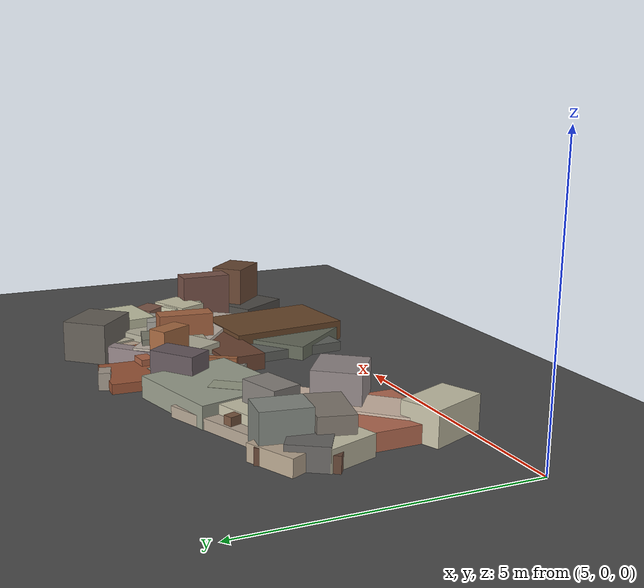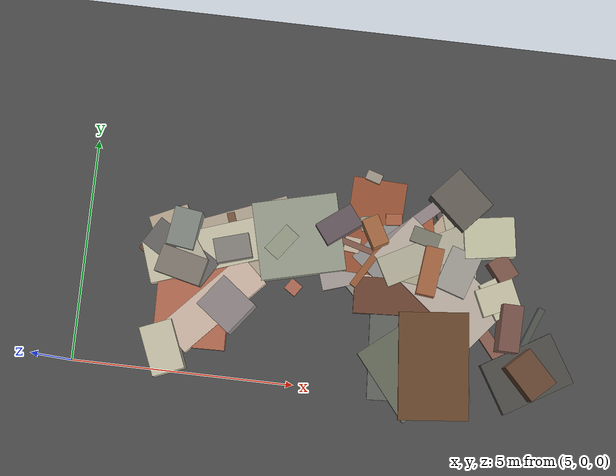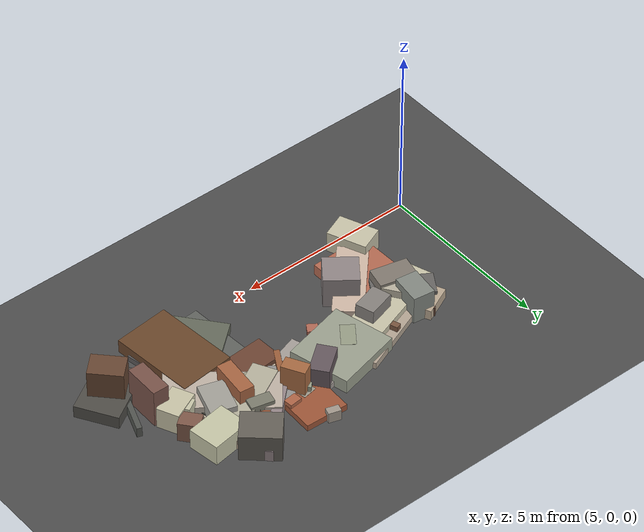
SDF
<sdf version="1.6">
 <world name="navitas_arena">
  <model name="ground_plane">
   <static>true</static>
   <link name="link">
    <collision name="collision">
     <geometry><plane><normal>0 0 1</normal><size>400 400</size></plane></geometry>
     <surface><friction><ode><mu>0.800</mu><mu2>0.800</mu2></ode></friction></surface>
    </collision>
    <visual name="visual">
     <cast_shadows>false</cast_shadows>
     <geometry><plane><normal>0 0 1</normal><size>400 400</size></plane></geometry>
     <material>
      <specular>0.04 0.04 0.04 1</specular>
      <script>
       <uri>file://media/materials/scripts/navitas_asphalt.material</uri>
       <name>Navitas/RealArenaAsphalt</name>
      </script>
     </material>
    </visual>
   </link>
  </model>
  <model name="deb_orta_11">
   <static>true</static>
   <pose>8.083 2.149 0.000 0 0 0</pose>
   <link name="link">
    <collision name="col_0">
     <pose>0.228 0.788 0.101 0.000 0.000 0.381</pose>
     <geometry><box><size>2.938 1.582 0.202</size></box></geometry>
    </collision>
    <visual name="vis_0">
     <pose>0.228 0.788 0.101 0.000 0.000 0.381</pose>
     <geometry><box><size>2.938 1.582 0.202</size></box></geometry>
     <material>
      <ambient>0.66 0.60 0.54 1</ambient>
      <diffuse>0.71 0.65 0.58 1</diffuse>
      <specular>0.05 0.05 0.045 1</specular>
     </material>
    </visual>
    <collision name="col_1">
     <pose>-0.046 -0.546 0.183 0.000 0.000 0.823</pose>
     <geometry><box><size>2.381 0.833 0.366</size></box></geometry>
    </collision>
    <visual name="vis_1">
     <pose>-0.046 -0.546 0.183 0.000 0.000 0.823</pose>
     <geometry><box><size>2.381 0.833 0.366</size></box></geometry>
     <material>
      <ambient>0.76 0.68 0.61 1</ambient>
      <diffuse>0.82 0.73 0.66 1</diffuse>
      <specular>0.05 0.05 0.045 1</specular>
     </material>
    </visual>
    <collision name="col_2">
     <pose>-0.771 0.387 0.304 0.000 0.000 -0.967</pose>
     <geometry><box><size>0.593 0.847 0.608</size></box></geometry>
    </collision>
    <visual name="vis_2">
     <pose>-0.771 0.387 0.304 0.000 0.000 -0.967</pose>
     <geometry><box><size>0.593 0.847 0.608</size></box></geometry>
     <material>
      <ambient>0.67 0.65 0.58 1</ambient>
      <diffuse>0.73 0.70 0.63 1</diffuse>
      <specular>0.05 0.05 0.045 1</specular>
     </material>
    </visual>
    <collision name="col_3">
     <pose>0.270 -0.554 0.457 0.000 0.000 0.922</pose>
     <geometry><box><size>0.863 0.954 0.914</size></box></geometry>
    </collision>
    <visual name="vis_3">
     <pose>0.270 -0.554 0.457 0.000 0.000 0.922</pose>
     <geometry><box><size>0.863 0.954 0.914</size></box></geometry>
     <material>
      <ambient>0.53 0.49 0.49 1</ambient>
      <diffuse>0.57 0.53 0.53 1</diffuse>
      <specular>0.05 0.05 0.045 1</specular>
     </material>
    </visual>
    <collision name="col_4">
     <pose>-0.526 -0.336 0.145 0.000 0.000 -0.963</pose>
     <geometry><box><size>2.237 0.123 0.289</size></box></geometry>
    </collision>
    <visual name="vis_4">
     <pose>-0.526 -0.336 0.145 0.000 0.000 -0.963</pose>
     <geometry><box><size>2.237 0.123 0.289</size></box></geometry>
     <material>
      <ambient>0.68 0.62 0.54 1</ambient>
      <diffuse>0.73 0.67 0.59 1</diffuse>
      <specular>0.05 0.05 0.045 1</specular>
     </material>
    </visual>
    <collision name="col_5">
     <pose>-0.785 -0.352 0.094 0.000 0.000 -0.751</pose>
     <geometry><box><size>0.314 0.478 0.188</size></box></geometry>
    </collision>
    <visual name="vis_5">
     <pose>-0.785 -0.352 0.094 0.000 0.000 -0.751</pose>
     <geometry><box><size>0.314 0.478 0.188</size></box></geometry>
     <material>
      <ambient>0.44 0.41 0.37 1</ambient>
      <diffuse>0.48 0.45 0.40 1</diffuse>
      <specular>0.05 0.05 0.045 1</specular>
     </material>
    </visual>
   </link>
  </model>
  <model name="deb_orta_23">
   <static>true</static>
   <pose>9.243 2.500 0.000 0 0 0</pose>
   <link name="link">
    <collision name="col_0">
     <pose>0.518 0.818 0.205 0.000 0.000 0.241</pose>
     <geometry><box><size>1.915 1.750 0.410</size></box></geometry>
    </collision>
    <visual name="vis_0">
     <pose>0.518 0.818 0.205 0.000 0.000 0.241</pose>
     <geometry><box><size>1.915 1.750 0.410</size></box></geometry>
     <material>
      <ambient>0.56 0.59 0.51 1</ambient>
      <diffuse>0.61 0.63 0.56 1</diffuse>
      <specular>0.05 0.05 0.045 1</specular>
     </material>
    </visual>
    <collision name="col_1">
     <pose>-0.842 0.555 0.179 0.000 0.000 1.921</pose>
     <geometry><box><size>1.326 0.171 0.358</size></box></geometry>
    </collision>
    <visual name="vis_1">
     <pose>-0.842 0.555 0.179 0.000 0.000 1.921</pose>
     <geometry><box><size>1.326 0.171 0.358</size></box></geometry>
     <material>
      <ambient>0.44 0.32 0.23 1</ambient>
      <diffuse>0.48 0.34 0.25 1</diffuse>
      <specular>0.05 0.05 0.045 1</specular>
     </material>
    </visual>
    <collision name="col_2">
     <pose>0.158 0.645 0.207 0.000 0.000 0.931</pose>
     <geometry><box><size>0.714 0.395 0.413</size></box></geometry>
    </collision>
    <visual name="vis_2">
     <pose>0.158 0.645 0.207 0.000 0.000 0.931</pose>
     <geometry><box><size>0.714 0.395 0.413</size></box></geometry>
     <material>
      <ambient>0.56 0.57 0.49 1</ambient>
      <diffuse>0.60 0.62 0.53 1</diffuse>
      <specular>0.05 0.05 0.045 1</specular>
     </material>
    </visual>
    <collision name="col_3">
     <pose>-0.901 0.360 0.386 0.000 0.000 0.286</pose>
     <geometry><box><size>0.800 0.543 0.772</size></box></geometry>
    </collision>
    <visual name="vis_3">
     <pose>-0.901 0.360 0.386 0.000 0.000 0.286</pose>
     <geometry><box><size>0.800 0.543 0.772</size></box></geometry>
     <material>
      <ambient>0.49 0.47 0.45 1</ambient>
      <diffuse>0.53 0.51 0.49 1</diffuse>
      <specular>0.05 0.05 0.045 1</specular>
     </material>
    </visual>
    <collision name="col_4">
     <pose>0.521 -0.315 0.074 0.000 0.000 0.976</pose>
     <geometry><box><size>0.288 0.295 0.148</size></box></geometry>
    </collision>
    <visual name="vis_4">
     <pose>0.521 -0.315 0.074 0.000 0.000 0.976</pose>
     <geometry><box><size>0.288 0.295 0.148</size></box></geometry>
     <material>
      <ambient>0.65 0.39 0.31 1</ambient>
      <diffuse>0.70 0.42 0.34 1</diffuse>
      <specular>0.05 0.05 0.045 1</specular>
     </material>
    </visual>
   </link>
  </model>
  <model name="deb_orta_54">
   <static>true</static>
   <pose>11.984 3.348 0.000 0 0 0</pose>
   <link name="link">
    <collision name="col_0">
     <pose>0.198 -0.499 0.119 0.000 0.000 -0.686</pose>
     <geometry><box><size>2.055 1.225 0.239</size></box></geometry>
    </collision>
    <visual name="vis_0">
     <pose>0.198 -0.499 0.119 0.000 0.000 -0.686</pose>
     <geometry><box><size>2.055 1.225 0.239</size></box></geometry>
     <material>
      <ambient>0.54 0.52 0.52 1</ambient>
      <diffuse>0.58 0.57 0.56 1</diffuse>
      <specular>0.05 0.05 0.045 1</specular>
     </material>
    </visual>
    <collision name="col_1">
     <pose>-0.664 0.462 0.097 0.000 0.000 0.177</pose>
     <geometry><box><size>0.417 0.328 0.193</size></box></geometry>
    </collision>
    <visual name="vis_1">
     <pose>-0.664 0.462 0.097 0.000 0.000 0.177</pose>
     <geometry><box><size>0.417 0.328 0.193</size></box></geometry>
     <material>
      <ambient>0.58 0.55 0.50 1</ambient>
      <diffuse>0.62 0.60 0.54 1</diffuse>
      <specular>0.05 0.05 0.045 1</specular>
     </material>
    </visual>
    <collision name="col_2">
     <pose>-0.616 -0.323 0.079 0.000 0.000 1.523</pose>
     <geometry><box><size>2.384 0.193 0.158</size></box></geometry>
    </collision>
    <visual name="vis_2">
     <pose>-0.616 -0.323 0.079 0.000 0.000 1.523</pose>
     <geometry><box><size>2.384 0.193 0.158</size></box></geometry>
     <material>
      <ambient>0.73 0.66 0.60 1</ambient>
      <diffuse>0.79 0.71 0.65 1</diffuse>
      <specular>0.05 0.05 0.045 1</specular>
     </material>
    </visual>
    <collision name="col_3">
     <pose>0.704 -0.099 0.209 0.000 0.000 0.494</pose>
     <geometry><box><size>2.232 0.685 0.419</size></box></geometry>
    </collision>
    <visual name="vis_3">
     <pose>0.704 -0.099 0.209 0.000 0.000 0.494</pose>
     <geometry><box><size>2.232 0.685 0.419</size></box></geometry>
     <material>
      <ambient>0.67 0.65 0.57 1</ambient>
      <diffuse>0.72 0.70 0.62 1</diffuse>
      <specular>0.05 0.05 0.045 1</specular>
     </material>
    </visual>
   </link>
  </model>
  <model name="deb_orta_66">
   <static>true</static>
   <pose>10.998 3.655 0.000 0 0 0</pose>
   <link name="link">
    <collision name="col_0">
     <pose>-0.129 -0.334 0.138 0.000 0.000 2.873</pose>
     <geometry><box><size>1.364 0.134 0.276</size></box></geometry>
    </collision>
    <visual name="vis_0">
     <pose>-0.129 -0.334 0.138 0.000 0.000 2.873</pose>
     <geometry><box><size>1.364 0.134 0.276</size></box></geometry>
     <material>
      <ambient>0.49 0.33 0.28 1</ambient>
      <diffuse>0.53 0.36 0.30 1</diffuse>
      <specular>0.05 0.05 0.045 1</specular>
     </material>
    </visual>
    <collision name="col_1">
     <pose>-0.184 -0.454 0.086 0.000 0.000 1.883</pose>
     <geometry><box><size>1.697 1.361 0.172</size></box></geometry>
    </collision>
    <visual name="vis_1">
     <pose>-0.184 -0.454 0.086 0.000 0.000 1.883</pose>
     <geometry><box><size>1.697 1.361 0.172</size></box></geometry>
     <material>
      <ambient>0.60 0.57 0.55 1</ambient>
      <diffuse>0.65 0.62 0.60 1</diffuse>
      <specular>0.05 0.05 0.045 1</specular>
     </material>
    </visual>
    <collision name="col_2">
     <pose>-0.028 -0.370 0.129 0.000 0.000 1.474</pose>
     <geometry><box><size>0.337 0.351 0.258</size></box></geometry>
    </collision>
    <visual name="vis_2">
     <pose>-0.028 -0.370 0.129 0.000 0.000 1.474</pose>
     <geometry><box><size>0.337 0.351 0.258</size></box></geometry>
     <material>
      <ambient>0.72 0.66 0.58 1</ambient>
      <diffuse>0.78 0.71 0.63 1</diffuse>
      <specular>0.05 0.05 0.045 1</specular>
     </material>
    </visual>
    <collision name="col_3">
     <pose>0.446 -0.083 0.477 0.000 0.000 2.073</pose>
     <geometry><box><size>0.666 0.374 0.954</size></box></geometry>
    </collision>
    <visual name="vis_3">
     <pose>0.446 -0.083 0.477 0.000 0.000 2.073</pose>
     <geometry><box><size>0.666 0.374 0.954</size></box></geometry>
     <material>
      <ambient>0.61 0.39 0.24 1</ambient>
      <diffuse>0.66 0.42 0.26 1</diffuse>
      <specular>0.05 0.05 0.045 1</specular>
     </material>
    </visual>
    <collision name="col_4">
     <pose>0.410 0.083 0.094 0.000 0.000 1.532</pose>
     <geometry><box><size>2.162 1.220 0.187</size></box></geometry>
    </collision>
    <visual name="vis_4">
     <pose>0.410 0.083 0.094 0.000 0.000 1.532</pose>
     <geometry><box><size>2.162 1.220 0.187</size></box></geometry>
     <material>
      <ambient>0.57 0.31 0.20 1</ambient>
      <diffuse>0.62 0.34 0.22 1</diffuse>
      <specular>0.05 0.05 0.045 1</specular>
     </material>
    </visual>
    <collision name="col_5">
     <pose>-0.373 -0.003 0.374 0.000 0.000 3.792</pose>
     <geometry><box><size>0.904 0.535 0.749</size></box></geometry>
    </collision>
    <visual name="vis_5">
     <pose>-0.373 -0.003 0.374 0.000 0.000 3.792</pose>
     <geometry><box><size>0.904 0.535 0.749</size></box></geometry>
     <material>
      <ambient>0.37 0.33 0.34 1</ambient>
      <diffuse>0.40 0.35 0.37 1</diffuse>
      <specular>0.05 0.05 0.045 1</specular>
     </material>
    </visual>
   </link>
  </model>
  <model name="deb_orta_83">
   <static>true</static>
   <pose>12.431 3.018 0.000 0 0 0</pose>
   <link name="link">
    <collision name="col_0">
     <pose>-0.069 -0.053 0.066 0.000 0.000 -0.982</pose>
     <geometry><box><size>0.270 0.179 0.132</size></box></geometry>
    </collision>
    <visual name="vis_0">
     <pose>-0.069 -0.053 0.066 0.000 0.000 -0.982</pose>
     <geometry><box><size>0.270 0.179 0.132</size></box></geometry>
     <material>
      <ambient>0.34 0.34 0.32 1</ambient>
      <diffuse>0.36 0.37 0.35 1</diffuse>
      <specular>0.05 0.05 0.045 1</specular>
     </material>
    </visual>
    <collision name="col_1">
     <pose>0.150 0.583 0.247 0.000 0.000 -0.240</pose>
     <geometry><box><size>0.641 0.354 0.494</size></box></geometry>
    </collision>
    <visual name="vis_1">
     <pose>0.150 0.583 0.247 0.000 0.000 -0.240</pose>
     <geometry><box><size>0.641 0.354 0.494</size></box></geometry>
     <material>
      <ambient>0.46 0.45 0.40 1</ambient>
      <diffuse>0.49 0.49 0.43 1</diffuse>
      <specular>0.05 0.05 0.045 1</specular>
     </material>
    </visual>
    <collision name="col_2">
     <pose>-0.021 0.073 0.100 0.000 0.000 -0.913</pose>
     <geometry><box><size>0.478 0.452 0.200</size></box></geometry>
    </collision>
    <visual name="vis_2">
     <pose>-0.021 0.073 0.100 0.000 0.000 -0.913</pose>
     <geometry><box><size>0.478 0.452 0.200</size></box></geometry>
     <material>
      <ambient>0.67 0.63 0.55 1</ambient>
      <diffuse>0.73 0.68 0.60 1</diffuse>
      <specular>0.05 0.05 0.045 1</specular>
     </material>
    </visual>
    <collision name="col_3">
     <pose>0.054 -0.545 0.086 0.000 0.000 -0.008</pose>
     <geometry><box><size>2.651 1.245 0.172</size></box></geometry>
    </collision>
    <visual name="vis_3">
     <pose>0.054 -0.545 0.086 0.000 0.000 -0.008</pose>
     <geometry><box><size>2.651 1.245 0.172</size></box></geometry>
     <material>
      <ambient>0.75 0.70 0.62 1</ambient>
      <diffuse>0.81 0.75 0.67 1</diffuse>
      <specular>0.05 0.05 0.045 1</specular>
     </material>
    </visual>
   </link>
  </model>
  <model name="deb_orta_95">
   <static>true</static>
   <pose>7.647 2.412 0.000 0 0 0</pose>
   <link name="link">
    <collision name="col_0">
     <pose>-0.257 -0.157 0.152 0.000 0.000 2.009</pose>
     <geometry><box><size>2.903 0.908 0.304</size></box></geometry>
    </collision>
    <visual name="vis_0">
     <pose>-0.257 -0.157 0.152 0.000 0.000 2.009</pose>
     <geometry><box><size>2.903 0.908 0.304</size></box></geometry>
     <material>
      <ambient>0.68 0.61 0.52 1</ambient>
      <diffuse>0.73 0.66 0.57 1</diffuse>
      <specular>0.05 0.05 0.045 1</specular>
     </material>
    </visual>
    <collision name="col_1">
     <pose>-0.418 0.765 0.415 0.000 0.000 1.434</pose>
     <geometry><box><size>0.864 0.617 0.829</size></box></geometry>
    </collision>
    <visual name="vis_1">
     <pose>-0.418 0.765 0.415 0.000 0.000 1.434</pose>
     <geometry><box><size>0.864 0.617 0.829</size></box></geometry>
     <material>
      <ambient>0.48 0.50 0.47 1</ambient>
      <diffuse>0.52 0.54 0.51 1</diffuse>
      <specular>0.05 0.05 0.045 1</specular>
     </material>
    </visual>
    <collision name="col_2">
     <pose>-0.090 -0.675 0.160 0.000 0.000 1.596</pose>
     <geometry><box><size>2.337 1.620 0.321</size></box></geometry>
    </collision>
    <visual name="vis_2">
     <pose>-0.090 -0.675 0.160 0.000 0.000 1.596</pose>
     <geometry><box><size>2.337 1.620 0.321</size></box></geometry>
     <material>
      <ambient>0.66 0.39 0.30 1</ambient>
      <diffuse>0.71 0.42 0.32 1</diffuse>
      <specular>0.05 0.05 0.045 1</specular>
     </material>
    </visual>
    <collision name="col_3">
     <pose>-0.132 -0.653 0.144 0.000 0.000 1.971</pose>
     <geometry><box><size>1.869 0.294 0.288</size></box></geometry>
    </collision>
    <visual name="vis_3">
     <pose>-0.132 -0.653 0.144 0.000 0.000 1.971</pose>
     <geometry><box><size>1.869 0.294 0.288</size></box></geometry>
     <material>
      <ambient>0.37 0.27 0.17 1</ambient>
      <diffuse>0.40 0.29 0.18 1</diffuse>
      <specular>0.05 0.05 0.045 1</specular>
     </material>
    </visual>
   </link>
  </model>
  <model name="deb_orta_104">
   <static>true</static>
   <pose>7.546 1.590 0.000 0 0 0</pose>
   <link name="link">
    <collision name="col_0">
     <pose>-0.483 -1.062 0.129 0.000 0.000 2.900</pose>
     <geometry><box><size>0.506 0.239 0.258</size></box></geometry>
    </collision>
    <visual name="vis_0">
     <pose>-0.483 -1.062 0.129 0.000 0.000 2.900</pose>
     <geometry><box><size>0.506 0.239 0.258</size></box></geometry>
     <material>
      <ambient>0.64 0.40 0.27 1</ambient>
      <diffuse>0.69 0.43 0.29 1</diffuse>
      <specular>0.05 0.05 0.045 1</specular>
     </material>
    </visual>
    <collision name="col_1">
     <pose>-0.508 -1.097 0.312 0.000 0.000 1.962</pose>
     <geometry><box><size>1.125 0.735 0.625</size></box></geometry>
    </collision>
    <visual name="vis_1">
     <pose>-0.508 -1.097 0.312 0.000 0.000 1.962</pose>
     <geometry><box><size>1.125 0.735 0.625</size></box></geometry>
     <material>
      <ambient>0.73 0.71 0.62 1</ambient>
      <diffuse>0.79 0.77 0.67 1</diffuse>
      <specular>0.05 0.05 0.045 1</specular>
     </material>
    </visual>
    <collision name="col_2">
     <pose>-0.362 1.069 0.207 0.000 0.000 2.589</pose>
     <geometry><box><size>1.662 0.697 0.414</size></box></geometry>
    </collision>
    <visual name="vis_2">
     <pose>-0.362 1.069 0.207 0.000 0.000 2.589</pose>
     <geometry><box><size>1.662 0.697 0.414</size></box></geometry>
     <material>
      <ambient>0.38 0.37 0.36 1</ambient>
      <diffuse>0.41 0.40 0.39 1</diffuse>
      <specular>0.05 0.05 0.045 1</specular>
     </material>
    </visual>
    <collision name="col_3">
     <pose>-0.004 1.132 0.169 0.000 0.000 1.698</pose>
     <geometry><box><size>0.519 0.186 0.339</size></box></geometry>
    </collision>
    <visual name="vis_3">
     <pose>-0.004 1.132 0.169 0.000 0.000 1.698</pose>
     <geometry><box><size>0.519 0.186 0.339</size></box></geometry>
     <material>
      <ambient>0.46 0.33 0.27 1</ambient>
      <diffuse>0.50 0.35 0.29 1</diffuse>
      <specular>0.05 0.05 0.045 1</specular>
     </material>
    </visual>
   </link>
  </model>
  <model name="deb_orta_108">
   <static>true</static>
   <pose>13.275 2.923 0.000 0 0 0</pose>
   <link name="link">
    <collision name="col_0">
     <pose>0.705 -0.692 0.160 0.000 0.000 -0.139</pose>
     <geometry><box><size>0.496 0.458 0.320</size></box></geometry>
    </collision>
    <visual name="vis_0">
     <pose>0.705 -0.692 0.160 0.000 0.000 -0.139</pose>
     <geometry><box><size>0.496 0.458 0.320</size></box></geometry>
     <material>
      <ambient>0.76 0.74 0.63 1</ambient>
      <diffuse>0.82 0.80 0.68 1</diffuse>
      <specular>0.05 0.05 0.045 1</specular>
     </material>
    </visual>
    <collision name="col_1">
     <pose>-0.314 0.693 0.121 0.000 0.000 0.832</pose>
     <geometry><box><size>1.489 0.819 0.242</size></box></geometry>
    </collision>
    <visual name="vis_1">
     <pose>-0.314 0.693 0.121 0.000 0.000 0.832</pose>
     <geometry><box><size>1.489 0.819 0.242</size></box></geometry>
     <material>
      <ambient>0.30 0.26 0.27 1</ambient>
      <diffuse>0.33 0.28 0.30 1</diffuse>
      <specular>0.05 0.05 0.045 1</specular>
     </material>
    </visual>
    <collision name="col_2">
     <pose>-1.090 -0.424 0.137 0.000 0.000 -1.035</pose>
     <geometry><box><size>0.387 0.352 0.274</size></box></geometry>
    </collision>
    <visual name="vis_2">
     <pose>-1.090 -0.424 0.137 0.000 0.000 -1.035</pose>
     <geometry><box><size>0.387 0.352 0.274</size></box></geometry>
     <material>
      <ambient>0.36 0.35 0.33 1</ambient>
      <diffuse>0.39 0.38 0.36 1</diffuse>
      <specular>0.05 0.05 0.045 1</specular>
     </material>
    </visual>
    <collision name="col_3">
     <pose>-0.424 0.490 0.140 0.000 0.000 0.971</pose>
     <geometry><box><size>2.299 0.747 0.280</size></box></geometry>
    </collision>
    <visual name="vis_3">
     <pose>-0.424 0.490 0.140 0.000 0.000 0.971</pose>
     <geometry><box><size>2.299 0.747 0.280</size></box></geometry>
     <material>
      <ambient>0.69 0.62 0.54 1</ambient>
      <diffuse>0.75 0.67 0.58 1</diffuse>
      <specular>0.05 0.05 0.045 1</specular>
     </material>
    </visual>
    <collision name="col_4">
     <pose>0.108 -0.015 0.294 0.000 0.000 1.256</pose>
     <geometry><box><size>0.993 0.710 0.589</size></box></geometry>
    </collision>
    <visual name="vis_4">
     <pose>0.108 -0.015 0.294 0.000 0.000 1.256</pose>
     <geometry><box><size>0.993 0.710 0.589</size></box></geometry>
     <material>
      <ambient>0.60 0.58 0.56 1</ambient>
      <diffuse>0.64 0.63 0.60 1</diffuse>
      <specular>0.05 0.05 0.045 1</specular>
     </material>
    </visual>
    <collision name="col_5">
     <pose>-0.759 -0.671 0.157 0.000 0.000 0.057</pose>
     <geometry><box><size>2.779 0.822 0.313</size></box></geometry>
    </collision>
    <visual name="vis_5">
     <pose>-0.759 -0.671 0.157 0.000 0.000 0.057</pose>
     <geometry><box><size>2.779 0.822 0.313</size></box></geometry>
     <material>
      <ambient>0.40 0.25 0.19 1</ambient>
      <diffuse>0.43 0.27 0.20 1</diffuse>
      <specular>0.05 0.05 0.045 1</specular>
     </material>
    </visual>
   </link>
  </model>
  <model name="deb_orta_111">
   <static>true</static>
   <pose>12.671 1.312 0.000 0 0 0</pose>
   <link name="link">
    <collision name="col_0">
     <pose>0.342 0.043 0.074 0.000 0.000 2.769</pose>
     <geometry><box><size>1.712 0.239 0.149</size></box></geometry>
    </collision>
    <visual name="vis_0">
     <pose>0.342 0.043 0.074 0.000 0.000 2.769</pose>
     <geometry><box><size>1.712 0.239 0.149</size></box></geometry>
     <material>
      <ambient>0.67 0.66 0.57 1</ambient>
      <diffuse>0.73 0.71 0.62 1</diffuse>
      <specular>0.05 0.05 0.045 1</specular>
     </material>
    </visual>
    <collision name="col_1">
     <pose>-0.174 -0.417 0.094 0.000 0.000 1.639</pose>
     <geometry><box><size>1.924 1.781 0.188</size></box></geometry>
    </collision>
    <visual name="vis_1">
     <pose>-0.174 -0.417 0.094 0.000 0.000 1.639</pose>
     <geometry><box><size>1.924 1.781 0.188</size></box></geometry>
     <material>
      <ambient>0.35 0.36 0.34 1</ambient>
      <diffuse>0.38 0.39 0.37 1</diffuse>
      <specular>0.05 0.05 0.045 1</specular>
     </material>
    </visual>
    <collision name="col_2">
     <pose>-0.065 -0.608 0.137 0.000 0.000 2.258</pose>
     <geometry><box><size>1.850 1.726 0.274</size></box></geometry>
    </collision>
    <visual name="vis_2">
     <pose>-0.065 -0.608 0.137 0.000 0.000 2.258</pose>
     <geometry><box><size>1.850 1.726 0.274</size></box></geometry>
     <material>
      <ambient>0.37 0.38 0.34 1</ambient>
      <diffuse>0.40 0.42 0.36 1</diffuse>
      <specular>0.05 0.05 0.045 1</specular>
     </material>
    </visual>
    <collision name="col_3">
     <pose>0.400 -0.534 0.199 0.000 0.000 1.671</pose>
     <geometry><box><size>2.407 1.565 0.397</size></box></geometry>
    </collision>
    <visual name="vis_3">
     <pose>0.400 -0.534 0.199 0.000 0.000 1.671</pose>
     <geometry><box><size>2.407 1.565 0.397</size></box></geometry>
     <material>
      <ambient>0.39 0.26 0.16 1</ambient>
      <diffuse>0.42 0.28 0.17 1</diffuse>
      <specular>0.05 0.05 0.045 1</specular>
     </material>
    </visual>
    <collision name="col_4">
     <pose>0.376 -0.488 0.081 0.000 0.000 1.750</pose>
     <geometry><box><size>1.841 1.572 0.162</size></box></geometry>
    </collision>
    <visual name="vis_4">
     <pose>0.376 -0.488 0.081 0.000 0.000 1.750</pose>
     <geometry><box><size>1.841 1.572 0.162</size></box></geometry>
     <material>
      <ambient>0.34 0.33 0.33 1</ambient>
      <diffuse>0.37 0.36 0.36 1</diffuse>
      <specular>0.05 0.05 0.045 1</specular>
     </material>
    </visual>
   </link>
  </model>
  <model name="deb_orta_140">
   <static>true</static>
   <pose>13.861 2.740 0.000 0 0 0</pose>
   <link name="link">
    <collision name="col_0">
     <pose>0.406 -0.343 0.305 0.000 0.000 2.125</pose>
     <geometry><box><size>0.871 0.400 0.609</size></box></geometry>
    </collision>
    <visual name="vis_0">
     <pose>0.406 -0.343 0.305 0.000 0.000 2.125</pose>
     <geometry><box><size>0.871 0.400 0.609</size></box></geometry>
     <material>
      <ambient>0.73 0.72 0.62 1</ambient>
      <diffuse>0.79 0.78 0.67 1</diffuse>
      <specular>0.05 0.05 0.045 1</specular>
     </material>
    </visual>
    <collision name="col_1">
     <pose>0.313 -0.207 0.076 0.000 0.000 2.234</pose>
     <geometry><box><size>0.450 0.478 0.152</size></box></geometry>
    </collision>
    <visual name="vis_1">
     <pose>0.313 -0.207 0.076 0.000 0.000 2.234</pose>
     <geometry><box><size>0.450 0.478 0.152</size></box></geometry>
     <material>
      <ambient>0.57 0.55 0.49 1</ambient>
      <diffuse>0.62 0.59 0.53 1</diffuse>
      <specular>0.05 0.05 0.045 1</specular>
     </material>
    </visual>
    <collision name="col_2">
     <pose>0.505 0.358 0.292 0.000 0.000 2.252</pose>
     <geometry><box><size>0.569 0.454 0.584</size></box></geometry>
    </collision>
    <visual name="vis_2">
     <pose>0.505 0.358 0.292 0.000 0.000 2.252</pose>
     <geometry><box><size>0.569 0.454 0.584</size></box></geometry>
     <material>
      <ambient>0.46 0.33 0.26 1</ambient>
      <diffuse>0.50 0.35 0.29 1</diffuse>
      <specular>0.05 0.05 0.045 1</specular>
     </material>
    </visual>
    <collision name="col_3">
     <pose>0.446 -0.306 0.318 0.000 0.000 0.429</pose>
     <geometry><box><size>0.862 0.625 0.636</size></box></geometry>
    </collision>
    <visual name="vis_3">
     <pose>0.446 -0.306 0.318 0.000 0.000 0.429</pose>
     <geometry><box><size>0.862 0.625 0.636</size></box></geometry>
     <material>
      <ambient>0.73 0.71 0.61 1</ambient>
      <diffuse>0.79 0.77 0.66 1</diffuse>
      <specular>0.05 0.05 0.045 1</specular>
     </material>
    </visual>
   </link>
  </model>
  <model name="deb_orta_161">
   <static>true</static>
   <pose>12.435 3.224 0.000 0 0 0</pose>
   <link name="link">
    <collision name="col_0">
     <pose>0.585 -0.582 0.190 0.000 0.000 2.465</pose>
     <geometry><box><size>2.977 1.243 0.381</size></box></geometry>
    </collision>
    <visual name="vis_0">
     <pose>0.585 -0.582 0.190 0.000 0.000 2.465</pose>
     <geometry><box><size>2.977 1.243 0.381</size></box></geometry>
     <material>
      <ambient>0.69 0.65 0.60 1</ambient>
      <diffuse>0.75 0.70 0.65 1</diffuse>
      <specular>0.05 0.05 0.045 1</specular>
     </material>
    </visual>
    <collision name="col_1">
     <pose>-0.333 0.209 0.170 0.000 0.000 1.151</pose>
     <geometry><box><size>0.300 0.167 0.339</size></box></geometry>
    </collision>
    <visual name="vis_1">
     <pose>-0.333 0.209 0.170 0.000 0.000 1.151</pose>
     <geometry><box><size>0.300 0.167 0.339</size></box></geometry>
     <material>
      <ambient>0.51 0.48 0.44 1</ambient>
      <diffuse>0.55 0.52 0.47 1</diffuse>
      <specular>0.05 0.05 0.045 1</specular>
     </material>
    </visual>
    <collision name="col_2">
     <pose>0.312 -0.386 0.418 0.000 0.000 1.459</pose>
     <geometry><box><size>1.083 0.412 0.836</size></box></geometry>
    </collision>
    <visual name="vis_2">
     <pose>0.312 -0.386 0.418 0.000 0.000 1.459</pose>
     <geometry><box><size>1.083 0.412 0.836</size></box></geometry>
     <material>
      <ambient>0.61 0.37 0.24 1</ambient>
      <diffuse>0.66 0.40 0.26 1</diffuse>
      <specular>0.05 0.05 0.045 1</specular>
     </material>
    </visual>
    <collision name="col_3">
     <pose>0.185 -0.744 0.156 0.000 0.000 3.069</pose>
     <geometry><box><size>1.876 0.130 0.312</size></box></geometry>
    </collision>
    <visual name="vis_3">
     <pose>0.185 -0.744 0.156 0.000 0.000 3.069</pose>
     <geometry><box><size>1.876 0.130 0.312</size></box></geometry>
     <material>
      <ambient>0.57 0.33 0.21 1</ambient>
      <diffuse>0.62 0.36 0.23 1</diffuse>
      <specular>0.05 0.05 0.045 1</specular>
     </material>
    </visual>
    <collision name="col_4">
     <pose>-0.103 -0.301 0.208 0.000 0.000 1.443</pose>
     <geometry><box><size>0.729 0.447 0.415</size></box></geometry>
    </collision>
    <visual name="vis_4">
     <pose>-0.103 -0.301 0.208 0.000 0.000 1.443</pose>
     <geometry><box><size>0.729 0.447 0.415</size></box></geometry>
     <material>
      <ambient>0.63 0.61 0.52 1</ambient>
      <diffuse>0.68 0.66 0.56 1</diffuse>
      <specular>0.05 0.05 0.045 1</specular>
     </material>
    </visual>
    <collision name="col_5">
     <pose>0.687 0.090 0.105 0.000 0.000 1.824</pose>
     <geometry><box><size>1.644 1.057 0.211</size></box></geometry>
    </collision>
    <visual name="vis_5">
     <pose>0.687 0.090 0.105 0.000 0.000 1.824</pose>
     <geometry><box><size>1.644 1.057 0.211</size></box></geometry>
     <material>
      <ambient>0.29 0.28 0.25 1</ambient>
      <diffuse>0.31 0.30 0.27 1</diffuse>
      <specular>0.05 0.05 0.045 1</specular>
     </material>
    </visual>
    <collision name="col_6">
     <pose>0.142 -0.010 0.180 0.000 0.000 1.857</pose>
     <geometry><box><size>0.964 0.555 0.359</size></box></geometry>
    </collision>
    <visual name="vis_6">
     <pose>0.142 -0.010 0.180 0.000 0.000 1.857</pose>
     <geometry><box><size>0.964 0.555 0.359</size></box></geometry>
     <material>
      <ambient>0.58 0.32 0.23 1</ambient>
      <diffuse>0.62 0.35 0.25 1</diffuse>
      <specular>0.05 0.05 0.045 1</specular>
     </material>
    </visual>
   </link>
  </model>
  <model name="deb_orta_165">
   <static>true</static>
   <pose>14.674 1.439 0.000 0 0 0</pose>
   <link name="link">
    <collision name="col_0">
     <pose>-0.149 -0.301 0.082 0.000 0.000 2.260</pose>
     <geometry><box><size>1.470 0.288 0.164</size></box></geometry>
    </collision>
    <visual name="vis_0">
     <pose>-0.149 -0.301 0.082 0.000 0.000 2.260</pose>
     <geometry><box><size>1.470 0.288 0.164</size></box></geometry>
     <material>
      <ambient>0.51 0.35 0.30 1</ambient>
      <diffuse>0.55 0.37 0.32 1</diffuse>
      <specular>0.05 0.05 0.045 1</specular>
     </material>
    </visual>
    <collision name="col_1">
     <pose>0.477 -0.598 0.185 0.000 0.000 0.543</pose>
     <geometry><box><size>1.720 1.212 0.369</size></box></geometry>
    </collision>
    <visual name="vis_1">
     <pose>0.477 -0.598 0.185 0.000 0.000 0.543</pose>
     <geometry><box><size>1.720 1.212 0.369</size></box></geometry>
     <material>
      <ambient>0.28 0.28 0.25 1</ambient>
      <diffuse>0.31 0.30 0.28 1</diffuse>
      <specular>0.05 0.05 0.045 1</specular>
     </material>
    </visual>
    <collision name="col_2">
     <pose>-0.059 0.331 0.565 0.000 0.000 1.555</pose>
     <geometry><box><size>1.035 0.455 1.131</size></box></geometry>
    </collision>
    <visual name="vis_2">
     <pose>-0.059 0.331 0.565 0.000 0.000 1.555</pose>
     <geometry><box><size>1.035 0.455 1.131</size></box></geometry>
     <material>
      <ambient>0.45 0.31 0.27 1</ambient>
      <diffuse>0.48 0.33 0.29 1</diffuse>
      <specular>0.05 0.05 0.045 1</specular>
     </material>
    </visual>
    <collision name="col_3">
     <pose>0.436 0.256 0.147 0.000 0.000 1.207</pose>
     <geometry><box><size>1.363 0.144 0.293</size></box></geometry>
    </collision>
    <visual name="vis_3">
     <pose>0.436 0.256 0.147 0.000 0.000 1.207</pose>
     <geometry><box><size>1.363 0.144 0.293</size></box></geometry>
     <material>
      <ambient>0.29 0.31 0.29 1</ambient>
      <diffuse>0.32 0.33 0.31 1</diffuse>
      <specular>0.05 0.05 0.045 1</specular>
     </material>
    </visual>
    <collision name="col_4">
     <pose>0.471 -0.636 0.579 0.000 0.000 2.335</pose>
     <geometry><box><size>0.934 0.683 1.159</size></box></geometry>
    </collision>
    <visual name="vis_4">
     <pose>0.471 -0.636 0.579 0.000 0.000 2.335</pose>
     <geometry><box><size>0.934 0.683 1.159</size></box></geometry>
     <material>
      <ambient>0.38 0.26 0.19 1</ambient>
      <diffuse>0.41 0.28 0.20 1</diffuse>
      <specular>0.05 0.05 0.045 1</specular>
     </material>
    </visual>
   </link>
  </model>
  <model name="deb_orta_199">
   <static>true</static>
   <pose>11.309 3.732 0.000 0 0 0</pose>
   <link name="link">
    <collision name="col_0">
     <pose>0.096 -0.801 0.161 0.000 0.000 1.043</pose>
     <geometry><box><size>1.312 0.157 0.321</size></box></geometry>
    </collision>
    <visual name="vis_0">
     <pose>0.096 -0.801 0.161 0.000 0.000 1.043</pose>
     <geometry><box><size>1.312 0.157 0.321</size></box></geometry>
     <material>
      <ambient>0.57 0.34 0.21 1</ambient>
      <diffuse>0.61 0.37 0.23 1</diffuse>
      <specular>0.05 0.05 0.045 1</specular>
     </material>
    </visual>
    <collision name="col_1">
     <pose>0.527 0.218 0.153 0.000 0.000 1.679</pose>
     <geometry><box><size>0.253 0.364 0.305</size></box></geometry>
    </collision>
    <visual name="vis_1">
     <pose>0.527 0.218 0.153 0.000 0.000 1.679</pose>
     <geometry><box><size>0.253 0.364 0.305</size></box></geometry>
     <material>
      <ambient>0.64 0.37 0.26 1</ambient>
      <diffuse>0.69 0.40 0.28 1</diffuse>
      <specular>0.05 0.05 0.045 1</specular>
     </material>
    </visual>
    <collision name="col_2">
     <pose>-0.043 0.053 0.169 0.000 0.000 2.335</pose>
     <geometry><box><size>0.256 0.194 0.339</size></box></geometry>
    </collision>
    <visual name="vis_2">
     <pose>-0.043 0.053 0.169 0.000 0.000 2.335</pose>
     <geometry><box><size>0.256 0.194 0.339</size></box></geometry>
     <material>
      <ambient>0.56 0.58 0.49 1</ambient>
      <diffuse>0.60 0.62 0.53 1</diffuse>
      <specular>0.05 0.05 0.045 1</specular>
     </material>
    </visual>
    <collision name="col_3">
     <pose>-0.020 1.125 0.161 0.000 0.000 2.842</pose>
     <geometry><box><size>0.354 0.217 0.322</size></box></geometry>
    </collision>
    <visual name="vis_3">
     <pose>-0.020 1.125 0.161 0.000 0.000 2.842</pose>
     <geometry><box><size>0.354 0.217 0.322</size></box></geometry>
     <material>
      <ambient>0.60 0.55 0.50 1</ambient>
      <diffuse>0.64 0.60 0.55 1</diffuse>
      <specular>0.05 0.05 0.045 1</specular>
     </material>
    </visual>
    <collision name="col_4">
     <pose>-0.541 -1.146 0.084 0.000 0.000 2.375</pose>
     <geometry><box><size>1.718 0.128 0.169</size></box></geometry>
    </collision>
    <visual name="vis_4">
     <pose>-0.541 -1.146 0.084 0.000 0.000 2.375</pose>
     <geometry><box><size>1.718 0.128 0.169</size></box></geometry>
     <material>
      <ambient>0.51 0.50 0.46 1</ambient>
      <diffuse>0.55 0.54 0.50 1</diffuse>
      <specular>0.05 0.05 0.045 1</specular>
     </material>
    </visual>
   </link>
  </model>
  <model name="deb_orta_263">
   <static>true</static>
   <pose>13.237 3.846 0.000 0 0 0</pose>
   <link name="link">
    <collision name="col_0">
     <pose>-0.615 0.026 0.143 0.000 0.000 1.791</pose>
     <geometry><box><size>0.505 0.244 0.286</size></box></geometry>
    </collision>
    <visual name="vis_0">
     <pose>-0.615 0.026 0.143 0.000 0.000 1.791</pose>
     <geometry><box><size>0.505 0.244 0.286</size></box></geometry>
     <material>
      <ambient>0.62 0.34 0.23 1</ambient>
      <diffuse>0.66 0.37 0.24 1</diffuse>
      <specular>0.05 0.05 0.045 1</specular>
     </material>
    </visual>
    <collision name="col_1">
     <pose>0.585 -0.394 0.174 0.000 0.000 -0.647</pose>
     <geometry><box><size>0.279 0.444 0.348</size></box></geometry>
    </collision>
    <visual name="vis_1">
     <pose>0.585 -0.394 0.174 0.000 0.000 -0.647</pose>
     <geometry><box><size>0.279 0.444 0.348</size></box></geometry>
     <material>
      <ambient>0.67 0.62 0.52 1</ambient>
      <diffuse>0.73 0.67 0.56 1</diffuse>
      <specular>0.05 0.05 0.045 1</specular>
     </material>
    </visual>
    <collision name="col_2">
     <pose>-0.674 0.314 0.167 0.000 0.000 0.740</pose>
     <geometry><box><size>2.367 0.277 0.333</size></box></geometry>
    </collision>
    <visual name="vis_2">
     <pose>-0.674 0.314 0.167 0.000 0.000 0.740</pose>
     <geometry><box><size>2.367 0.277 0.333</size></box></geometry>
     <material>
      <ambient>0.54 0.49 0.50 1</ambient>
      <diffuse>0.59 0.53 0.54 1</diffuse>
      <specular>0.05 0.05 0.045 1</specular>
     </material>
    </visual>
    <collision name="col_3">
     <pose>0.036 0.650 0.394 0.000 0.000 -0.725</pose>
     <geometry><box><size>1.087 0.891 0.789</size></box></geometry>
    </collision>
    <visual name="vis_3">
     <pose>0.036 0.650 0.394 0.000 0.000 -0.725</pose>
     <geometry><box><size>1.087 0.891 0.789</size></box></geometry>
     <material>
      <ambient>0.37 0.35 0.33 1</ambient>
      <diffuse>0.40 0.38 0.35 1</diffuse>
      <specular>0.05 0.05 0.045 1</specular>
     </material>
    </visual>
    <collision name="col_4">
     <pose>-0.096 -0.070 0.126 0.000 0.000 2.025</pose>
     <geometry><box><size>1.235 0.313 0.252</size></box></geometry>
    </collision>
    <visual name="vis_4">
     <pose>-0.096 -0.070 0.126 0.000 0.000 2.025</pose>
     <geometry><box><size>1.235 0.313 0.252</size></box></geometry>
     <material>
      <ambient>0.34 0.29 0.29 1</ambient>
      <diffuse>0.37 0.32 0.31 1</diffuse>
      <specular>0.05 0.05 0.045 1</specular>
     </material>
    </visual>
    <collision name="col_5">
     <pose>0.755 -0.095 0.302 0.000 0.000 0.155</pose>
     <geometry><box><size>1.133 0.892 0.604</size></box></geometry>
    </collision>
    <visual name="vis_5">
     <pose>0.755 -0.095 0.302 0.000 0.000 0.155</pose>
     <geometry><box><size>1.133 0.892 0.604</size></box></geometry>
     <material>
      <ambient>0.73 0.72 0.61 1</ambient>
      <diffuse>0.78 0.78 0.66 1</diffuse>
      <specular>0.05 0.05 0.045 1</specular>
     </material>
    </visual>
    <collision name="col_6">
     <pose>-0.046 -0.236 0.158 0.000 0.000 1.861</pose>
     <geometry><box><size>1.303 0.207 0.317</size></box></geometry>
    </collision>
    <visual name="vis_6">
     <pose>-0.046 -0.236 0.158 0.000 0.000 1.861</pose>
     <geometry><box><size>1.303 0.207 0.317</size></box></geometry>
     <material>
      <ambient>0.69 0.66 0.57 1</ambient>
      <diffuse>0.74 0.71 0.62 1</diffuse>
      <specular>0.05 0.05 0.045 1</specular>
     </material>
    </visual>
   </link>
  </model>
  <model name="deb_orta_283">
   <static>true</static>
   <pose>7.739 2.668 0.000 0 0 0</pose>
   <link name="link">
    <collision name="col_0">
     <pose>-0.566 0.434 0.122 0.000 0.000 3.500</pose>
     <geometry><box><size>0.225 0.295 0.244</size></box></geometry>
    </collision>
    <visual name="vis_0">
     <pose>-0.566 0.434 0.122 0.000 0.000 3.500</pose>
     <geometry><box><size>0.225 0.295 0.244</size></box></geometry>
     <material>
      <ambient>0.77 0.73 0.63 1</ambient>
      <diffuse>0.83 0.79 0.68 1</diffuse>
      <specular>0.05 0.05 0.045 1</specular>
     </material>
    </visual>
    <collision name="col_1">
     <pose>-1.039 0.463 0.142 0.000 0.000 0.932</pose>
     <geometry><box><size>1.309 0.220 0.283</size></box></geometry>
    </collision>
    <visual name="vis_1">
     <pose>-1.039 0.463 0.142 0.000 0.000 0.932</pose>
     <geometry><box><size>1.309 0.220 0.283</size></box></geometry>
     <material>
      <ambient>0.37 0.25 0.20 1</ambient>
      <diffuse>0.39 0.27 0.21 1</diffuse>
      <specular>0.05 0.05 0.045 1</specular>
     </material>
    </visual>
    <collision name="col_2">
     <pose>-0.491 -0.307 0.346 0.000 0.000 2.911</pose>
     <geometry><box><size>1.055 0.628 0.692</size></box></geometry>
    </collision>
    <visual name="vis_2">
     <pose>-0.491 -0.307 0.346 0.000 0.000 2.911</pose>
     <geometry><box><size>1.055 0.628 0.692</size></box></geometry>
     <material>
      <ambient>0.47 0.44 0.41 1</ambient>
      <diffuse>0.51 0.48 0.44 1</diffuse>
      <specular>0.05 0.05 0.045 1</specular>
     </material>
    </visual>
    <collision name="col_3">
     <pose>0.183 0.190 0.190 0.000 0.000 3.472</pose>
     <geometry><box><size>3.136 0.955 0.381</size></box></geometry>
    </collision>
    <visual name="vis_3">
     <pose>0.183 0.190 0.190 0.000 0.000 3.472</pose>
     <geometry><box><size>3.136 0.955 0.381</size></box></geometry>
     <material>
      <ambient>0.73 0.71 0.62 1</ambient>
      <diffuse>0.79 0.77 0.67 1</diffuse>
      <specular>0.05 0.05 0.045 1</specular>
     </material>
    </visual>
   </link>
  </model>
 </world>
</sdf>
